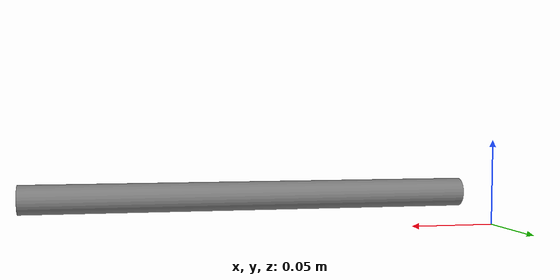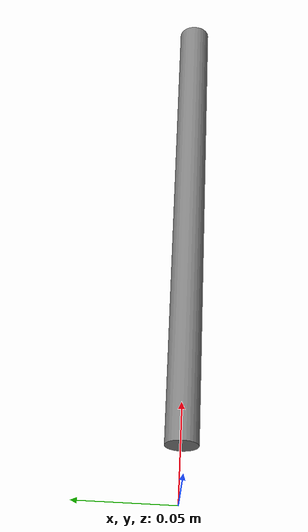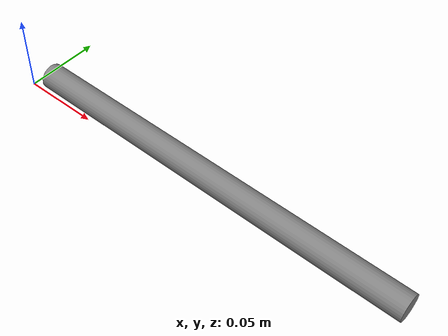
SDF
<sdf version="1.6">

    <model name="robot">
        <pose>.02 0.0 0.0 1.57 0.0 0.0</pose>
        <static>false</static>
        <link name="world"></link>

        <link name="robotlink">
            <inertial>
                <mass>5.0</mass>
                <!-- inertia based on solid sphere 2/5 mr^2 -->
                <inertia>
                    <ixx>2.37e-6</ixx>
                    <iyy>2.37e-6</iyy>
                    <izz>2.37e-6</izz>
                    <ixy>0</ixy>
                    <ixz>0</ixz>
                    <iyz>0</iyz>
                </inertia>
            </inertial>
            <collision name="robot_collision">
                <geometry>
                    <mesh>
                        <uri>cvx_stick.obj</uri>
                        <scale>0.001 0.001 0.001</scale>
                    </mesh>
                </geometry>
                <surface>
                    <bounce>
                        <restitution_coefficient>0.0 </restitution_coefficient>
                        <threshold>0.05</threshold>
                    </bounce>
                </surface>
            </collision>
            <sensor name='my_contact' type='contact'>
                <contact>
                    <collision>robot_collision</collision>
                </contact>
                <update_rate> 5 </update_rate>
            </sensor>
            <visual name="visual">
                <geometry>
                    <mesh>
                        <uri>cvx_stick.obj</uri>
                        <scale>0.001 0.001 0.001</scale>
                    </mesh>
                </geometry>
                <material>
                    <ambient>0.19225 0.19225 0.19225 1.0</ambient>
                    <diffuse>0.50754 0.50754 0.50754 1.0</diffuse>
                    <specular>0.508273 0.508273 0.508273 1.0</specular>
                    <emissive>0.0 0.0 0.0 0.0</emissive>
                </material>
            </visual>
            <gravity>0</gravity>
            <self_collide>0</self_collide>
            <kinematic>0</kinematic>
        </link>
        <joint name="robotprismatic" type="prismatic">
            <pose>0 -0.15 0 0 0 0</pose>
            <child>robotlink</child>
            <parent>world</parent>
            <axis>
                <limit>
                    <lower>0.0</lower>
                    <upper>0.12</upper>
                </limit>
                <xyz>0 1 0</xyz>
            </axis>
        </joint>
    </model>

</sdf>
